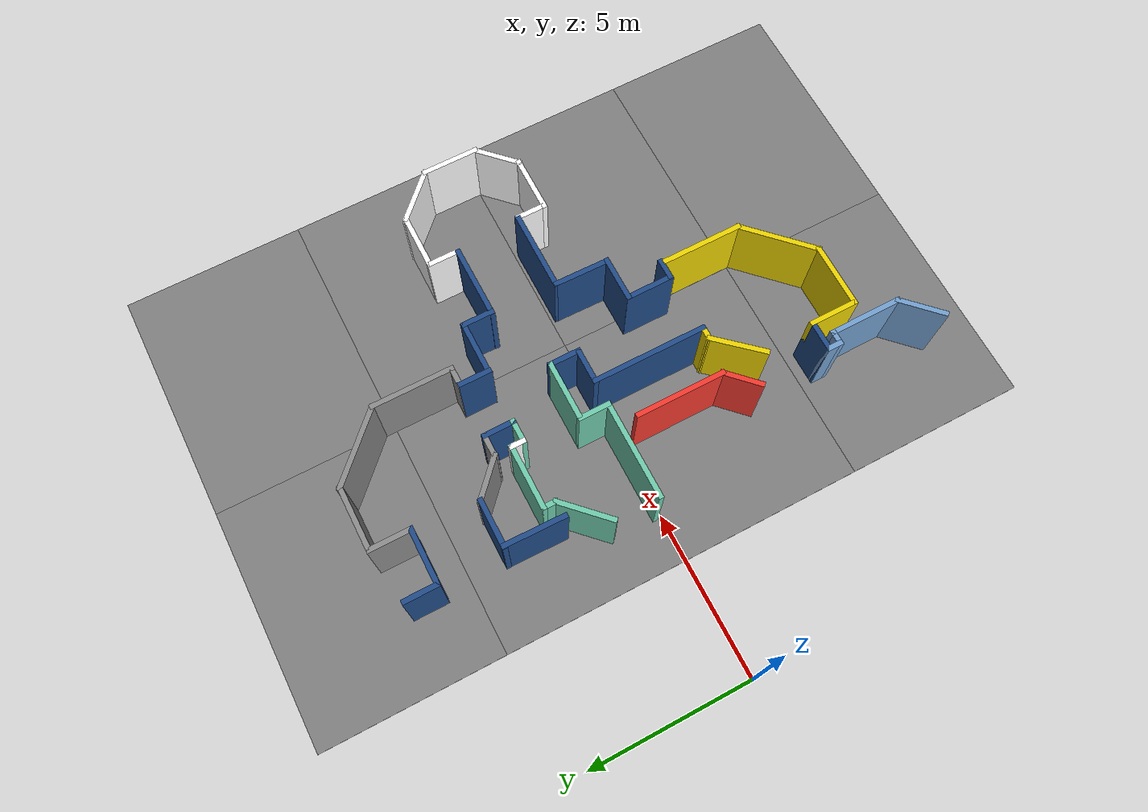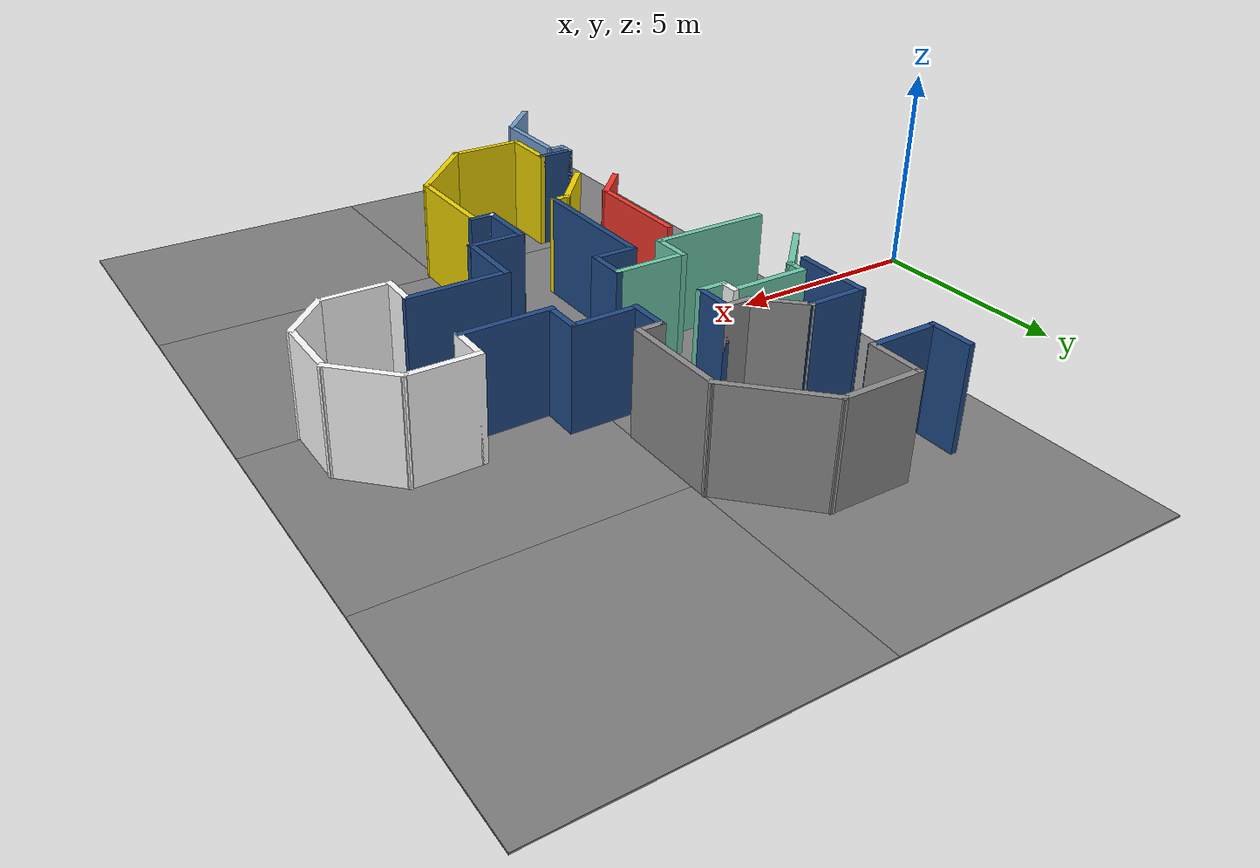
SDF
<sdf version="1.7">
 <world name="default">
  <model name="among_us_world">
   <pose>0.133216 -0.12311 0 0 -0 0</pose>
   <link name="Wall_10">
    <collision name="Wall_10_Collision">
     <geometry><box><size>0.677967 0.15 2.5</size></box></geometry>
     <pose>0 0 1.25 0 -0 0</pose>
    </collision>
    <visual name="Wall_10_Visual">
     <pose>0 0 1.25 0 -0 0</pose>
     <geometry><box><size>0.677967 0.15 2.5</size></box></geometry>
     <material>
      <ambient>0.55 0.55 0.55 1</ambient>
      <diffuse>0.55 0.55 0.55 1</diffuse>
      <specular>0.08 0.08 0.08 1</specular>
      <emissive>0 0 0 1</emissive>
      <pbr><metal><roughness>0.85</roughness><metalness>0</metalness></metal></pbr>
     </material>
     <meta><layer>0</layer></meta>
    </visual>
    <pose>10.3484 3.61514 0 0 -0 3.14159</pose>
   </link>
   <link name="Wall_11">
    <collision name="Wall_11_Collision">
     <geometry><box><size>1 0.15 2.5</size></box></geometry>
     <pose>0 0 1.25 0 -0 0</pose>
    </collision>
    <visual name="Wall_11_Visual">
     <pose>0 0 1.25 0 -0 0</pose>
     <geometry><box><size>1 0.15 2.5</size></box></geometry>
     <material>
      <ambient>0.12549 0.290196 0.529412 1</ambient>
      <diffuse>0.12549 0.290196 0.529412 1</diffuse>
      <specular>0.08 0.08 0.08 1</specular>
      <emissive>0 0 0 1</emissive>
      <pbr>
       <metal>
        <albedo_map>model://asphalt_plane/materials/textures/tarmac.png</albedo_map>
        <roughness>0.85</roughness>
        <metalness>0</metalness>
       </metal>
      </pbr>
     </material>
     <meta><layer>0</layer></meta>
    </visual>
    <pose>10.0844 3.17225 0 0 -0 -1.5708</pose>
   </link>
   <link name="Wall_118">
    <collision name="Wall_118_Collision">
     <geometry><box><size>1.5 0.15 2.5</size></box></geometry>
     <pose>0 0 1.25 0 -0 0</pose>
    </collision>
    <visual name="Wall_118_Visual">
     <pose>0 0 1.25 0 -0 0</pose>
     <geometry><box><size>1.5 0.15 2.5</size></box></geometry>
     <material>
      <ambient>0.12549 0.290196 0.529412 1</ambient>
      <diffuse>0.12549 0.290196 0.529412 1</diffuse>
      <specular>0.08 0.08 0.08 1</specular>
      <emissive>0 0 0 1</emissive>
      <pbr>
       <metal>
        <albedo_map>model://asphalt_plane/materials/textures/tarmac.png</albedo_map>
        <roughness>0.85</roughness>
        <metalness>0</metalness>
       </metal>
      </pbr>
     </material>
     <meta><layer>0</layer></meta>
    </visual>
    <pose>6.27303 4.52497 0 0 -0 0</pose>
   </link>
   <link name="Wall_119">
    <collision name="Wall_119_Collision">
     <geometry><box><size>1.41276 0.15 2.5</size></box></geometry>
     <pose>0 0 1.25 0 -0 0</pose>
    </collision>
    <visual name="Wall_119_Visual">
     <pose>0 0 1.25 0 -0 0</pose>
     <geometry><box><size>1.41276 0.15 2.5</size></box></geometry>
     <material>
      <ambient>0.55 0.55 0.55 1</ambient>
      <diffuse>0.55 0.55 0.55 1</diffuse>
      <specular>0.08 0.08 0.08 1</specular>
      <emissive>0 0 0 1</emissive>
      <pbr><metal><roughness>0.85</roughness><metalness>0</metalness></metal></pbr>
     </material>
     <meta><layer>0</layer></meta>
    </visual>
    <pose>7.42533 4.09435 0 0 -0 -0.750545</pose>
   </link>
   <link name="Wall_12">
    <collision name="Wall_12_Collision">
     <geometry><box><size>1.67797 0.15 2.5</size></box></geometry>
     <pose>0 0 1.25 0 -0 0</pose>
    </collision>
    <visual name="Wall_12_Visual">
     <pose>0 0 1.25 0 -0 0</pose>
     <geometry><box><size>1.67797 0.15 2.5</size></box></geometry>
     <material>
      <ambient>0.12549 0.290196 0.529412 1</ambient>
      <diffuse>0.12549 0.290196 0.529412 1</diffuse>
      <specular>0.08 0.08 0.08 1</specular>
      <emissive>0 0 0 1</emissive>
      <pbr>
       <metal>
        <albedo_map>model://asphalt_plane/materials/textures/tarmac.png</albedo_map>
        <roughness>0.85</roughness>
        <metalness>0</metalness>
       </metal>
      </pbr>
     </material>
     <meta><layer>0</layer></meta>
    </visual>
    <pose>10.8484 2.76514 0 0 -0 0</pose>
   </link>
   <link name="Wall_122">
    <collision name="Wall_122_Collision">
     <geometry><box><size>0.75 0.15 2.5</size></box></geometry>
     <pose>0 0 1.25 0 -0 0</pose>
    </collision>
    <visual name="Wall_122_Visual">
     <pose>0 0 1.25 0 -0 0</pose>
     <geometry><box><size>0.75 0.15 2.5</size></box></geometry>
     <material>
      <ambient>0.55 0.55 0.55 1</ambient>
      <diffuse>0.55 0.55 0.55 1</diffuse>
      <specular>0.08 0.08 0.08 1</specular>
      <emissive>0 0 0 1</emissive>
      <pbr><metal><roughness>0.85</roughness><metalness>0</metalness></metal></pbr>
     </material>
     <meta><layer>0</layer></meta>
    </visual>
    <pose>8.18707 3.66372 0 0 -0 0</pose>
   </link>
   <link name="Wall_123">
    <collision name="Wall_123_Collision">
     <geometry><box><size>1 0.15 2.5</size></box></geometry>
     <pose>0 0 1.25 0 -0 0</pose>
    </collision>
    <visual name="Wall_123_Visual">
     <pose>0 0 1.25 0 -0 0</pose>
     <geometry><box><size>1 0.15 2.5</size></box></geometry>
     <material>
      <ambient>0.12549 0.290196 0.529412 1</ambient>
      <diffuse>0.12549 0.290196 0.529412 1</diffuse>
      <specular>0.08 0.08 0.08 1</specular>
      <emissive>0 0 0 1</emissive>
      <pbr>
       <metal>
        <albedo_map>model://asphalt_plane/materials/textures/tarmac.png</albedo_map>
        <roughness>0.85</roughness>
        <metalness>0</metalness>
       </metal>
      </pbr>
     </material>
     <meta><layer>0</layer></meta>
    </visual>
    <pose>8.48707 3.23872 0 0 -0 -1.5708</pose>
   </link>
   <link name="Wall_124">
    <collision name="Wall_124_Collision">
     <geometry><box><size>0.75 0.15 2.5</size></box></geometry>
     <pose>0 0 1.25 0 -0 0</pose>
    </collision>
    <visual name="Wall_124_Visual">
     <pose>0 0 1.25 0 -0 0</pose>
     <geometry><box><size>0.75 0.15 2.5</size></box></geometry>
     <material>
      <ambient>0.435294 0.796078 0.67451 1</ambient>
      <diffuse>0.435294 0.796078 0.67451 1</diffuse>
      <specular>0.08 0.08 0.08 1</specular>
      <emissive>0 0 0 1</emissive>
      <pbr>
       <metal>
        <albedo_map>model://among_us_world/materials/textures/ceiling_tiled_111_203_172.jpg</albedo_map>
        <roughness>0.85</roughness>
        <metalness>0</metalness>
       </metal>
      </pbr>
     </material>
     <meta><layer>0</layer></meta>
    </visual>
    <pose>8.18707 2.81372 0 0 -0 3.14159</pose>
   </link>
   <link name="Wall_125">
    <collision name="Wall_125_Collision">
     <geometry><box><size>0.5 0.15 2.5</size></box></geometry>
     <pose>0 0 1.25 0 -0 0</pose>
    </collision>
    <visual name="Wall_125_Visual">
     <pose>0 0 1.25 0 -0 0</pose>
     <geometry><box><size>0.5 0.15 2.5</size></box></geometry>
     <material>
      <ambient>1 1 1 1</ambient>
      <diffuse>1 1 1 1</diffuse>
      <specular>0.08 0.08 0.08 1</specular>
      <emissive>0 0 0 1</emissive>
      <pbr>
       <metal>
        <albedo_map>model://among_us_world/materials/textures/ceiling_tiled_255_255_255.jpg</albedo_map>
        <roughness>0.85</roughness>
        <metalness>0</metalness>
       </metal>
      </pbr>
     </material>
     <meta><layer>0</layer></meta>
    </visual>
    <pose>7.88707 2.98872 0 0 -0 1.5708</pose>
   </link>
   <link name="Wall_126">
    <collision name="Wall_126_Collision">
     <geometry><box><size>2 0.15 2.5</size></box></geometry>
     <pose>0 0 1.25 0 -0 0</pose>
    </collision>
    <visual name="Wall_126_Visual">
     <pose>0 0 1.25 0 -0 0</pose>
     <geometry><box><size>2 0.15 2.5</size></box></geometry>
     <material>
      <ambient>0.435294 0.796078 0.67451 1</ambient>
      <diffuse>0.435294 0.796078 0.67451 1</diffuse>
      <specular>0.08 0.08 0.08 1</specular>
      <emissive>0 0 0 1</emissive>
      <pbr>
       <metal>
        <albedo_map>model://among_us_world/materials/textures/ceiling_tiled_111_203_172.jpg</albedo_map>
        <roughness>0.85</roughness>
        <metalness>0</metalness>
       </metal>
      </pbr>
     </material>
     <meta><layer>0</layer></meta>
    </visual>
    <pose>6.96207 3.16372 0 0 -0 3.14159</pose>
   </link>
   <link name="Wall_127">
    <collision name="Wall_127_Collision">
     <geometry><box><size>0.5 0.15 2.5</size></box></geometry>
     <pose>0 0 1.25 0 -0 0</pose>
    </collision>
    <visual name="Wall_127_Visual">
     <pose>0 0 1.25 0 -0 0</pose>
     <geometry><box><size>0.5 0.15 2.5</size></box></geometry>
     <material>
      <ambient>0.435294 0.796078 0.67451 1</ambient>
      <diffuse>0.435294 0.796078 0.67451 1</diffuse>
      <specular>0.08 0.08 0.08 1</specular>
      <emissive>0 0 0 1</emissive>
      <pbr>
       <metal>
        <albedo_map>model://among_us_world/materials/textures/ceiling_tiled_111_203_172.jpg</albedo_map>
        <roughness>0.85</roughness>
        <metalness>0</metalness>
       </metal>
      </pbr>
     </material>
     <meta><layer>0</layer></meta>
    </visual>
    <pose>6.03707 2.98872 0 0 -0 -1.5708</pose>
   </link>
   <link name="Wall_128">
    <collision name="Wall_128_Collision">
     <geometry><box><size>1.75 0.15 2.5</size></box></geometry>
     <pose>0 0 1.25 0 -0 0</pose>
    </collision>
    <visual name="Wall_128_Visual">
     <pose>0 0 1.25 0 -0 0</pose>
     <geometry><box><size>1.75 0.15 2.5</size></box></geometry>
     <material>
      <ambient>0.435294 0.796078 0.67451 1</ambient>
      <diffuse>0.435294 0.796078 0.67451 1</diffuse>
      <specular>0.08 0.08 0.08 1</specular>
      <emissive>0 0 0 1</emissive>
      <pbr>
       <metal>
        <albedo_map>model://among_us_world/materials/textures/ceiling_tiled_111_203_172.jpg</albedo_map>
        <roughness>0.85</roughness>
        <metalness>0</metalness>
       </metal>
      </pbr>
     </material>
     <meta><layer>0</layer></meta>
    </visual>
    <pose>5.47138 2.24804 0 0 -0 -2.35619</pose>
   </link>
   <link name="Wall_13">
    <collision name="Wall_13_Collision">
     <geometry><box><size>0.99953 0.15 2.5</size></box></geometry>
     <pose>0 0 1.25 0 -0 0</pose>
    </collision>
    <visual name="Wall_13_Visual">
     <pose>0 0 1.25 0 -0 0</pose>
     <geometry><box><size>0.99953 0.15 2.5</size></box></geometry>
     <material>
      <ambient>0.12549 0.290196 0.529412 1</ambient>
      <diffuse>0.12549 0.290196 0.529412 1</diffuse>
      <specular>0.08 0.08 0.08 1</specular>
      <emissive>0 0 0 1</emissive>
      <pbr>
       <metal>
        <albedo_map>model://asphalt_plane/materials/textures/tarmac.png</albedo_map>
        <roughness>0.85</roughness>
        <metalness>0</metalness>
       </metal>
      </pbr>
     </material>
     <meta><layer>0</layer></meta>
    </visual>
    <pose>11.6124 2.34037 0 0 -0 -1.5708</pose>
   </link>
   <link name="Wall_130">
    <collision name="Wall_130_Collision">
     <geometry><box><size>3 0.15 2.5</size></box></geometry>
     <pose>0 0 1.25 0 -0 0</pose>
    </collision>
    <visual name="Wall_130_Visual">
     <pose>0 0 1.25 0 -0 0</pose>
     <geometry><box><size>3 0.15 2.5</size></box></geometry>
     <material>
      <ambient>0.435294 0.796078 0.67451 1</ambient>
      <diffuse>0.435294 0.796078 0.67451 1</diffuse>
      <specular>0.08 0.08 0.08 1</specular>
      <emissive>0 0 0 1</emissive>
      <pbr>
       <metal>
        <albedo_map>model://among_us_world/materials/textures/ceiling_tiled_111_203_172.jpg</albedo_map>
        <roughness>0.85</roughness>
        <metalness>0</metalness>
       </metal>
      </pbr>
     </material>
     <meta><layer>0</layer></meta>
    </visual>
    <pose>6.3307 0.332351 0 0 -0 0</pose>
   </link>
   <link name="Wall_131">
    <collision name="Wall_131_Collision">
     <geometry><box><size>1 0.15 2.5</size></box></geometry>
     <pose>0 0 1.25 0 -0 0</pose>
    </collision>
    <visual name="Wall_131_Visual">
     <pose>0 0 1.25 0 -0 0</pose>
     <geometry><box><size>1 0.15 2.5</size></box></geometry>
     <material>
      <ambient>0.435294 0.796078 0.67451 1</ambient>
      <diffuse>0.435294 0.796078 0.67451 1</diffuse>
      <specular>0.08 0.08 0.08 1</specular>
      <emissive>0 0 0 1</emissive>
      <pbr>
       <metal>
        <albedo_map>model://among_us_world/materials/textures/ceiling_tiled_111_203_172.jpg</albedo_map>
        <roughness>0.85</roughness>
        <metalness>0</metalness>
       </metal>
      </pbr>
     </material>
     <meta><layer>0</layer></meta>
    </visual>
    <pose>7.7557 0.757351 0 0 -0 1.5708</pose>
   </link>
   <link name="Wall_132">
    <collision name="Wall_132_Collision">
     <geometry><box><size>1.85593 0.15 2.5</size></box></geometry>
     <pose>0 0 1.25 0 -0 0</pose>
    </collision>
    <visual name="Wall_132_Visual">
     <pose>0 0 1.25 0 -0 0</pose>
     <geometry><box><size>1.85593 0.15 2.5</size></box></geometry>
     <material>
      <ambient>0.435294 0.796078 0.67451 1</ambient>
      <diffuse>0.435294 0.796078 0.67451 1</diffuse>
      <specular>0.08 0.08 0.08 1</specular>
      <emissive>0 0 0 1</emissive>
      <pbr>
       <metal>
        <albedo_map>model://among_us_world/materials/textures/ceiling_tiled_111_203_172.jpg</albedo_map>
        <roughness>0.85</roughness>
        <metalness>0</metalness>
       </metal>
      </pbr>
     </material>
     <meta><layer>0</layer></meta>
    </visual>
    <pose>8.60867 1.18235 0 0 -0 0</pose>
   </link>
   <link name="Wall_133">
    <collision name="Wall_133_Collision">
     <geometry><box><size>1 0.15 2.5</size></box></geometry>
     <pose>0 0 1.25 0 -0 0</pose>
    </collision>
    <visual name="Wall_133_Visual">
     <pose>0 0 1.25 0 -0 0</pose>
     <geometry><box><size>1 0.15 2.5</size></box></geometry>
     <material>
      <ambient>0.12549 0.290196 0.529412 1</ambient>
      <diffuse>0.12549 0.290196 0.529412 1</diffuse>
      <specular>0.08 0.08 0.08 1</specular>
      <emissive>0 0 0 1</emissive>
      <pbr>
       <metal>
        <albedo_map>model://asphalt_plane/materials/textures/tarmac.png</albedo_map>
        <roughness>0.85</roughness>
        <metalness>0</metalness>
       </metal>
      </pbr>
     </material>
     <meta><layer>0</layer></meta>
    </visual>
    <pose>9.47952 0.757351 0 0 -0 -1.5708</pose>
   </link>
   <link name="Wall_134">
    <collision name="Wall_134_Collision">
     <geometry><box><size>1.10593 0.15 2.5</size></box></geometry>
     <pose>0 0 1.25 0 -0 0</pose>
    </collision>
    <visual name="Wall_134_Visual">
     <pose>0 0 1.25 0 -0 0</pose>
     <geometry><box><size>1.10593 0.15 2.5</size></box></geometry>
     <material>
      <ambient>0.12549 0.290196 0.529412 1</ambient>
      <diffuse>0.12549 0.290196 0.529412 1</diffuse>
      <specular>0.08 0.08 0.08 1</specular>
      <emissive>0 0 0 1</emissive>
      <pbr>
       <metal>
        <albedo_map>model://asphalt_plane/materials/textures/tarmac.png</albedo_map>
        <roughness>0.85</roughness>
        <metalness>0</metalness>
       </metal>
      </pbr>
     </material>
     <meta><layer>0</layer></meta>
    </visual>
    <pose>8.98367 0.332351 0 0 -0 3.14159</pose>
   </link>
   <link name="Wall_135">
    <collision name="Wall_135_Collision">
     <geometry><box><size>3.5 0.15 2.5</size></box></geometry>
     <pose>0 0 1.25 0 -0 0</pose>
    </collision>
    <visual name="Wall_135_Visual">
     <pose>0 0 1.25 0 -0 0</pose>
     <geometry><box><size>3.5 0.15 2.5</size></box></geometry>
     <material>
      <ambient>0.12549 0.290196 0.529412 1</ambient>
      <diffuse>0.12549 0.290196 0.529412 1</diffuse>
      <specular>0.08 0.08 0.08 1</specular>
      <emissive>0 0 0 1</emissive>
      <pbr>
       <metal>
        <albedo_map>model://asphalt_plane/materials/textures/tarmac.png</albedo_map>
        <roughness>0.85</roughness>
        <metalness>0</metalness>
       </metal>
      </pbr>
     </material>
     <meta><layer>0</layer></meta>
    </visual>
    <pose>8.5057 -1.34265 0 0 -0 -1.5708</pose>
   </link>
   <link name="Wall_136">
    <collision name="Wall_136_Collision">
     <geometry><box><size>0.5 0.15 2.5</size></box></geometry>
     <pose>0 0 1.25 0 -0 0</pose>
    </collision>
    <visual name="Wall_136_Visual">
     <pose>0 0 1.25 0 -0 0</pose>
     <geometry><box><size>0.5 0.15 2.5</size></box></geometry>
     <material>
      <ambient>0.929412 0.831373 0 1</ambient>
      <diffuse>0.929412 0.831373 0 1</diffuse>
      <specular>0.08 0.08 0.08 1</specular>
      <emissive>0 0 0 1</emissive>
      <pbr>
       <metal>
        <albedo_map>model://among_us_world/materials/textures/ceiling_tiled_237_212_0.jpg</albedo_map>
        <roughness>0.85</roughness>
        <metalness>0</metalness>
       </metal>
      </pbr>
     </material>
     <meta><layer>0</layer></meta>
    </visual>
    <pose>8.3307 -3.01765 0 0 -0 3.14159</pose>
   </link>
   <link name="Wall_14">
    <collision name="Wall_14_Collision">
     <geometry><box><size>2.25007 0.15 2.5</size></box></geometry>
     <pose>0 0 1.25 0 -0 0</pose>
    </collision>
    <visual name="Wall_14_Visual">
     <pose>0 0 1.25 0 -0 0</pose>
     <geometry><box><size>2.25007 0.15 2.5</size></box></geometry>
     <material>
      <ambient>0.12549 0.290196 0.529412 1</ambient>
      <diffuse>0.12549 0.290196 0.529412 1</diffuse>
      <specular>0.08 0.08 0.08 1</specular>
      <emissive>0 0 0 1</emissive>
      <pbr>
       <metal>
        <albedo_map>model://asphalt_plane/materials/textures/tarmac.png</albedo_map>
        <roughness>0.85</roughness>
        <metalness>0</metalness>
       </metal>
      </pbr>
     </material>
     <meta><layer>0</layer></meta>
    </visual>
    <pose>12.6445 1.92431 0 0 -0 0.008281</pose>
   </link>
   <link name="Wall_143">
    <collision name="Wall_143_Collision">
     <geometry><box><size>1.75259 0.15 2.5</size></box></geometry>
     <pose>0 0 1.25 0 -0 0</pose>
    </collision>
    <visual name="Wall_143_Visual">
     <pose>0 0 1.25 0 -0 0</pose>
     <geometry><box><size>1.75259 0.15 2.5</size></box></geometry>
     <material>
      <ambient>0.929412 0.831373 0 1</ambient>
      <diffuse>0.929412 0.831373 0 1</diffuse>
      <specular>0.08 0.08 0.08 1</specular>
      <emissive>0 0 0 1</emissive>
      <pbr>
       <metal>
        <albedo_map>model://among_us_world/materials/textures/ceiling_tiled_237_212_0.jpg</albedo_map>
        <roughness>0.85</roughness>
        <metalness>0</metalness>
       </metal>
      </pbr>
     </material>
     <meta><layer>0</layer></meta>
    </visual>
    <pose>7.62213 -3.61546 0 0 -0 -2.29947</pose>
   </link>
   <link name="Wall_15">
    <collision name="Wall_15_Collision">
     <geometry><box><size>1.02562 0.15 2.5</size></box></geometry>
     <pose>0 0 1.25 0 -0 0</pose>
    </collision>
    <visual name="Wall_15_Visual">
     <pose>0 0 1.25 0 -0 0</pose>
     <geometry><box><size>1.02562 0.15 2.5</size></box></geometry>
     <material>
      <ambient>1 1 1 1</ambient>
      <diffuse>1 1 1 1</diffuse>
      <specular>0.08 0.08 0.08 1</specular>
      <emissive>0 0 0 1</emissive>
      <pbr>
       <metal>
        <albedo_map>model://among_us_world/materials/textures/ceiling_tiled_46_52_54.jpg</albedo_map>
        <roughness>0.85</roughness>
        <metalness>0</metalness>
       </metal>
      </pbr>
     </material>
     <meta><layer>0</layer></meta>
    </visual>
    <pose>13.7124 2.37081 0 0 -0 1.5708</pose>
   </link>
   <link name="Wall_179">
    <collision name="Wall_179_Collision">
     <geometry><box><size>1.90693 0.15 2.5</size></box></geometry>
     <pose>0 0 1.25 0 -0 0</pose>
    </collision>
    <visual name="Wall_179_Visual">
     <pose>0 0 1.25 0 -0 0</pose>
     <geometry><box><size>1.90693 0.15 2.5</size></box></geometry>
     <material>
      <ambient>0.12549 0.290196 0.529412 1</ambient>
      <diffuse>0.12549 0.290196 0.529412 1</diffuse>
      <specular>0.08 0.08 0.08 1</specular>
      <emissive>0 0 0 1</emissive>
      <pbr>
       <metal>
        <albedo_map>model://asphalt_plane/materials/textures/tarmac.png</albedo_map>
        <roughness>0.85</roughness>
        <metalness>0</metalness>
       </metal>
      </pbr>
     </material>
     <meta><layer>0</layer></meta>
    </visual>
    <pose>5.59803 3.64664 0 0 -0 -1.58851</pose>
   </link>
   <link name="Wall_19">
    <collision name="Wall_19_Collision">
     <geometry><box><size>1.75 0.15 2.5</size></box></geometry>
     <pose>0 0 1.25 0 -0 0</pose>
    </collision>
    <visual name="Wall_19_Visual">
     <pose>0 0 1.25 0 -0 0</pose>
     <geometry><box><size>1.75 0.15 2.5</size></box></geometry>
     <material>
      <ambient>1 1 1 1</ambient>
      <diffuse>1 1 1 1</diffuse>
      <specular>0.08 0.08 0.08 1</specular>
      <emissive>0 0 0 1</emissive>
      <pbr>
       <metal>
        <albedo_map>model://among_us_world/materials/textures/ceiling_tiled_46_52_54.jpg</albedo_map>
        <roughness>0.85</roughness>
        <metalness>0</metalness>
       </metal>
      </pbr>
     </material>
     <meta><layer>0</layer></meta>
    </visual>
    <pose>14.5124 2.80862 0 0 -0 0</pose>
   </link>
   <link name="Wall_192">
    <collision name="Wall_192_Collision">
     <geometry><box><size>1.25 0.15 2.5</size></box></geometry>
     <pose>0 0 1.25 0 -0 0</pose>
    </collision>
    <visual name="Wall_192_Visual">
     <pose>0 0 1.25 0 -0 0</pose>
     <geometry><box><size>1.25 0.15 2.5</size></box></geometry>
     <material>
      <ambient>0.95 0.22 0.18 1</ambient>
      <diffuse>0.95 0.22 0.18 1</diffuse>
      <specular>0.08 0.08 0.08 1</specular>
      <emissive>0 0 0 1</emissive>
      <pbr>
       <metal>
        <albedo_map>model://among_us_world/materials/textures/ceiling_tiled_164_0_0.jpg</albedo_map>
        <roughness>0.85</roughness>
        <metalness>0</metalness>
       </metal>
      </pbr>
     </material>
     <meta><layer>0</layer></meta>
    </visual>
    <pose>6.72747 -3.22436 0 0 -0 0.785398</pose>
   </link>
   <link name="Wall_193">
    <collision name="Wall_193_Collision">
     <geometry><box><size>2.75 0.15 2.5</size></box></geometry>
     <pose>0 0 1.25 0 -0 0</pose>
    </collision>
    <visual name="Wall_193_Visual">
     <pose>0 0 1.25 0 -0 0</pose>
     <geometry><box><size>2.75 0.15 2.5</size></box></geometry>
     <material>
      <ambient>0.95 0.22 0.18 1</ambient>
      <diffuse>0.95 0.22 0.18 1</diffuse>
      <specular>0.08 0.08 0.08 1</specular>
      <emissive>0 0 0 1</emissive>
      <pbr>
       <metal>
        <albedo_map>model://among_us_world/materials/textures/ceiling_tiled_164_0_0.jpg</albedo_map>
        <roughness>0.85</roughness>
        <metalness>0</metalness>
       </metal>
      </pbr>
     </material>
     <meta><layer>0</layer></meta>
    </visual>
    <pose>7.11638 -1.53545 0 0 -0 1.5708</pose>
   </link>
   <link name="Wall_20">
    <collision name="Wall_20_Collision">
     <geometry><box><size>1.75 0.15 2.5</size></box></geometry>
     <pose>0 0 1.25 0 -0 0</pose>
    </collision>
    <visual name="Wall_20_Visual">
     <pose>0 0 1.25 0 -0 0</pose>
     <geometry><box><size>1.75 0.15 2.5</size></box></geometry>
     <material>
      <ambient>1 1 1 1</ambient>
      <diffuse>1 1 1 1</diffuse>
      <specular>0.08 0.08 0.08 1</specular>
      <emissive>0 0 0 1</emissive>
      <pbr>
       <metal>
        <albedo_map>model://among_us_world/materials/textures/ceiling_tiled_46_52_54.jpg</albedo_map>
        <roughness>0.85</roughness>
        <metalness>0</metalness>
       </metal>
      </pbr>
     </material>
     <meta><layer>0</layer></meta>
    </visual>
    <pose>15.8781 2.24293 0 0 -0 -0.785398</pose>
   </link>
   <link name="Wall_21">
    <collision name="Wall_21_Collision">
     <geometry><box><size>1.75 0.15 2.5</size></box></geometry>
     <pose>0 0 1.25 0 -0 0</pose>
    </collision>
    <visual name="Wall_21_Visual">
     <pose>0 0 1.25 0 -0 0</pose>
     <geometry><box><size>1.75 0.15 2.5</size></box></geometry>
     <material>
      <ambient>1 1 1 1</ambient>
      <diffuse>1 1 1 1</diffuse>
      <specular>0.08 0.08 0.08 1</specular>
      <emissive>0 0 0 1</emissive>
      <pbr>
       <metal>
        <albedo_map>model://among_us_world/materials/textures/ceiling_tiled_255_255_255.jpg</albedo_map>
        <roughness>0.85</roughness>
        <metalness>0</metalness>
       </metal>
      </pbr>
     </material>
     <meta><layer>0</layer></meta>
    </visual>
    <pose>16.4438 0.877247 0 0 -0 -1.5708</pose>
   </link>
   <link name="Wall_22">
    <collision name="Wall_22_Collision">
     <geometry><box><size>1.5 0.15 2.5</size></box></geometry>
     <pose>0 0 1.25 0 -0 0</pose>
    </collision>
    <visual name="Wall_22_Visual">
     <pose>0 0 1.25 0 -0 0</pose>
     <geometry><box><size>1.5 0.15 2.5</size></box></geometry>
     <material>
      <ambient>1 1 1 1</ambient>
      <diffuse>1 1 1 1</diffuse>
      <specular>0.08 0.08 0.08 1</specular>
      <emissive>0 0 0 1</emissive>
      <pbr>
       <metal>
        <albedo_map>model://among_us_world/materials/textures/ceiling_tiled_46_52_54.jpg</albedo_map>
        <roughness>0.85</roughness>
        <metalness>0</metalness>
       </metal>
      </pbr>
     </material>
     <meta><layer>0</layer></meta>
    </visual>
    <pose>15.9665 -0.40005 0 0 -0 -2.35619</pose>
   </link>
   <link name="Wall_23">
    <collision name="Wall_23_Collision">
     <geometry><box><size>1.75 0.15 2.5</size></box></geometry>
     <pose>0 0 1.25 0 -0 0</pose>
    </collision>
    <visual name="Wall_23_Visual">
     <pose>0 0 1.25 0 -0 0</pose>
     <geometry><box><size>1.75 0.15 2.5</size></box></geometry>
     <material>
      <ambient>1 1 1 1</ambient>
      <diffuse>1 1 1 1</diffuse>
      <specular>0.08 0.08 0.08 1</specular>
      <emissive>0 0 0 1</emissive>
      <pbr>
       <metal>
        <albedo_map>model://among_us_world/materials/textures/ceiling_tiled_255_255_255.jpg</albedo_map>
        <roughness>0.85</roughness>
        <metalness>0</metalness>
       </metal>
      </pbr>
     </material>
     <meta><layer>0</layer></meta>
    </visual>
    <pose>14.6892 -0.877347 0 0 -0 3.14159</pose>
   </link>
   <link name="Wall_24">
    <collision name="Wall_24_Collision">
     <geometry><box><size>0.963748 0.15 2.5</size></box></geometry>
     <pose>0 0 1.25 0 -0 0</pose>
    </collision>
    <visual name="Wall_24_Visual">
     <pose>0 0 1.25 0 -0 0</pose>
     <geometry><box><size>0.963748 0.15 2.5</size></box></geometry>
     <material>
      <ambient>1 1 1 1</ambient>
      <diffuse>1 1 1 1</diffuse>
      <specular>0.08 0.08 0.08 1</specular>
      <emissive>0 0 0 1</emissive>
      <pbr>
       <metal>
        <albedo_map>model://among_us_world/materials/textures/ceiling_tiled_46_52_54.jpg</albedo_map>
        <roughness>0.85</roughness>
        <metalness>0</metalness>
       </metal>
      </pbr>
     </material>
     <meta><layer>0</layer></meta>
    </visual>
    <pose>13.8892 -0.470473 0 0 -0 1.5708</pose>
   </link>
   <link name="Wall_25">
    <collision name="Wall_25_Collision">
     <geometry><box><size>2.5 0.15 2.5</size></box></geometry>
     <pose>0 0 1.25 0 -0 0</pose>
    </collision>
    <visual name="Wall_25_Visual">
     <pose>0 0 1.25 0 -0 0</pose>
     <geometry><box><size>2.5 0.15 2.5</size></box></geometry>
     <material>
      <ambient>0.12549 0.290196 0.529412 1</ambient>
      <diffuse>0.12549 0.290196 0.529412 1</diffuse>
      <specular>0.08 0.08 0.08 1</specular>
      <emissive>0 0 0 1</emissive>
      <pbr>
       <metal>
        <albedo_map>model://asphalt_plane/materials/textures/tarmac.png</albedo_map>
        <roughness>0.85</roughness>
        <metalness>0</metalness>
       </metal>
      </pbr>
     </material>
     <meta><layer>0</layer></meta>
    </visual>
    <pose>12.7142 -0.045708 0 0 -0 3.14159</pose>
   </link>
   <link name="Wall_26">
    <collision name="Wall_26_Collision">
     <geometry><box><size>1.73416 0.15 2.5</size></box></geometry>
     <pose>0 0 1.25 0 -0 0</pose>
    </collision>
    <visual name="Wall_26_Visual">
     <pose>0 0 1.25 0 -0 0</pose>
     <geometry><box><size>1.73416 0.15 2.5</size></box></geometry>
     <material>
      <ambient>0.12549 0.290196 0.529412 1</ambient>
      <diffuse>0.12549 0.290196 0.529412 1</diffuse>
      <specular>0.08 0.08 0.08 1</specular>
      <emissive>0 0 0 1</emissive>
      <pbr>
       <metal>
        <albedo_map>model://asphalt_plane/materials/textures/tarmac.png</albedo_map>
        <roughness>0.85</roughness>
        <metalness>0</metalness>
       </metal>
      </pbr>
     </material>
     <meta><layer>0</layer></meta>
    </visual>
    <pose>11.5256 -0.855562 0 0 -0 -1.58788</pose>
   </link>
   <link name="Wall_27">
    <collision name="Wall_27_Collision">
     <geometry><box><size>1.40477 0.15 2.5</size></box></geometry>
     <pose>0 0 1.25 0 -0 0</pose>
    </collision>
    <visual name="Wall_27_Visual">
     <pose>0 0 1.25 0 -0 0</pose>
     <geometry><box><size>1.40477 0.15 2.5</size></box></geometry>
     <material>
      <ambient>0.12549 0.290196 0.529412 1</ambient>
      <diffuse>0.12549 0.290196 0.529412 1</diffuse>
      <specular>0.08 0.08 0.08 1</specular>
      <emissive>0 0 0 1</emissive>
      <pbr>
       <metal>
        <albedo_map>model://asphalt_plane/materials/textures/tarmac.png</albedo_map>
        <roughness>0.85</roughness>
        <metalness>0</metalness>
       </metal>
      </pbr>
     </material>
     <meta><layer>0</layer></meta>
    </visual>
    <pose>10.8914 -1.64752 0 0 -0 3.14159</pose>
   </link>
   <link name="Wall_4">
    <collision name="Wall_4_Collision">
     <geometry><box><size>1.06331 0.15 2.5</size></box></geometry>
     <pose>0 0 1.25 0 -0 0</pose>
    </collision>
    <visual name="Wall_4_Visual">
     <pose>0 0 1.25 0 -0 0</pose>
     <geometry><box><size>1.06331 0.15 2.5</size></box></geometry>
     <material>
      <ambient>0.12549 0.290196 0.529412 1</ambient>
      <diffuse>0.12549 0.290196 0.529412 1</diffuse>
      <specular>0.08 0.08 0.08 1</specular>
      <emissive>0 0 0 1</emissive>
      <pbr>
       <metal>
        <albedo_map>model://asphalt_plane/materials/textures/tarmac.png</albedo_map>
        <roughness>0.85</roughness>
        <metalness>0</metalness>
       </metal>
      </pbr>
     </material>
     <meta><layer>0</layer></meta>
    </visual>
    <pose>5.50068 6.92018 0 0 -0 -1.5708</pose>
   </link>
   <link name="Wall_5">
    <collision name="Wall_5_Collision">
     <geometry><box><size>1.75 0.15 2.5</size></box></geometry>
     <pose>0 0 1.25 0 -0 0</pose>
    </collision>
    <visual name="Wall_5_Visual">
     <pose>0 0 1.25 0 -0 0</pose>
     <geometry><box><size>1.75 0.15 2.5</size></box></geometry>
     <material>
      <ambient>0.12549 0.290196 0.529412 1</ambient>
      <diffuse>0.12549 0.290196 0.529412 1</diffuse>
      <specular>0.08 0.08 0.08 1</specular>
      <emissive>0 0 0 1</emissive>
      <pbr>
       <metal>
        <albedo_map>model://asphalt_plane/materials/textures/tarmac.png</albedo_map>
        <roughness>0.85</roughness>
        <metalness>0</metalness>
       </metal>
      </pbr>
     </material>
     <meta><layer>0</layer></meta>
    </visual>
    <pose>6.30068 6.44797 0 0 -0 0</pose>
   </link>
   <link name="Wall_6">
    <collision name="Wall_6_Collision">
     <geometry><box><size>1.31331 0.15 2.5</size></box></geometry>
     <pose>0 0 1.25 0 -0 0</pose>
    </collision>
    <visual name="Wall_6_Visual">
     <pose>0 0 1.25 0 -0 0</pose>
     <geometry><box><size>1.31331 0.15 2.5</size></box></geometry>
     <material>
      <ambient>0.55 0.55 0.55 1</ambient>
      <diffuse>0.55 0.55 0.55 1</diffuse>
      <specular>0.08 0.08 0.08 1</specular>
      <emissive>0 0 0 1</emissive>
      <pbr><metal><roughness>0.85</roughness><metalness>0</metalness></metal></pbr>
     </material>
     <meta><layer>0</layer></meta>
    </visual>
    <pose>7.10068 7.04518 0 0 -0 1.5708</pose>
   </link>
   <link name="Wall_7">
    <collision name="Wall_7_Collision">
     <geometry><box><size>2 0.15 2.5</size></box></geometry>
     <pose>0 0 1.25 0 -0 0</pose>
    </collision>
    <visual name="Wall_7_Visual">
     <pose>0 0 1.25 0 -0 0</pose>
     <geometry><box><size>2 0.15 2.5</size></box></geometry>
     <material>
      <ambient>0.55 0.55 0.55 1</ambient>
      <diffuse>0.55 0.55 0.55 1</diffuse>
      <specular>0.08 0.08 0.08 1</specular>
      <emissive>0 0 0 1</emissive>
      <pbr><metal><roughness>0.85</roughness><metalness>0</metalness></metal></pbr>
     </material>
     <meta><layer>0</layer></meta>
    </visual>
    <pose>8.02568 7.62684 0 0 -0 0</pose>
   </link>
   <link name="Wall_73">
    <collision name="Wall_73_Collision">
     <geometry><box><size>1.5 0.15 2.5</size></box></geometry>
     <pose>0 0 1.25 0 -0 0</pose>
    </collision>
    <visual name="Wall_73_Visual">
     <pose>0 0 1.25 0 -0 0</pose>
     <geometry><box><size>1.5 0.15 2.5</size></box></geometry>
     <material>
      <ambient>0.447059 0.623529 0.811765 1</ambient>
      <diffuse>0.447059 0.623529 0.811765 1</diffuse>
      <specular>0.08 0.08 0.08 1</specular>
      <emissive>0 0 0 1</emissive>
      <pbr>
       <metal>
        <albedo_map>model://among_us_world/materials/textures/ceiling_tiled_114_159_207.jpg</albedo_map>
        <roughness>0.85</roughness>
        <metalness>0</metalness>
       </metal>
      </pbr>
     </material>
     <meta><layer>0</layer></meta>
    </visual>
    <pose>6.25753 -8.69102 0 0 -0 0.785398</pose>
   </link>
   <link name="Wall_76">
    <collision name="Wall_76_Collision">
     <geometry><box><size>2.25 0.15 2.5</size></box></geometry>
     <pose>0 0 1.25 0 -0 0</pose>
    </collision>
    <visual name="Wall_76_Visual">
     <pose>0 0 1.25 0 -0 0</pose>
     <geometry><box><size>2.25 0.15 2.5</size></box></geometry>
     <material>
      <ambient>0.447059 0.623529 0.811765 1</ambient>
      <diffuse>0.447059 0.623529 0.811765 1</diffuse>
      <specular>0.08 0.08 0.08 1</specular>
      <emissive>0 0 0 1</emissive>
      <pbr>
       <metal>
        <albedo_map>model://among_us_world/materials/textures/ceiling_tiled_114_159_207.jpg</albedo_map>
        <roughness>0.85</roughness>
        <metalness>0</metalness>
       </metal>
      </pbr>
     </material>
     <meta><layer>0</layer></meta>
    </visual>
    <pose>6.73483 -7.16372 0 0 -0 1.5708</pose>
   </link>
   <link name="Wall_77">
    <collision name="Wall_77_Collision">
     <geometry><box><size>0.5 0.15 2.5</size></box></geometry>
     <pose>0 0 1.25 0 -0 0</pose>
    </collision>
    <visual name="Wall_77_Visual">
     <pose>0 0 1.25 0 -0 0</pose>
     <geometry><box><size>0.5 0.15 2.5</size></box></geometry>
     <material>
      <ambient>0.447059 0.623529 0.811765 1</ambient>
      <diffuse>0.447059 0.623529 0.811765 1</diffuse>
      <specular>0.08 0.08 0.08 1</specular>
      <emissive>0 0 0 1</emissive>
      <pbr>
       <metal>
        <albedo_map>model://among_us_world/materials/textures/ceiling_tiled_114_159_207.jpg</albedo_map>
        <roughness>0.85</roughness>
        <metalness>0</metalness>
       </metal>
      </pbr>
     </material>
     <meta><layer>0</layer></meta>
    </visual>
    <pose>6.55983 -6.11372 0 0 -0 3.14159</pose>
   </link>
   <link name="Wall_78">
    <collision name="Wall_78_Collision">
     <geometry><box><size>0.5 0.15 2.5</size></box></geometry>
     <pose>0 0 1.25 0 -0 0</pose>
    </collision>
    <visual name="Wall_78_Visual">
     <pose>0 0 1.25 0 -0 0</pose>
     <geometry><box><size>0.5 0.15 2.5</size></box></geometry>
     <material>
      <ambient>0.447059 0.623529 0.811765 1</ambient>
      <diffuse>0.447059 0.623529 0.811765 1</diffuse>
      <specular>0.08 0.08 0.08 1</specular>
      <emissive>0 0 0 1</emissive>
      <pbr>
       <metal>
        <albedo_map>model://among_us_world/materials/textures/ceiling_tiled_114_159_207.jpg</albedo_map>
        <roughness>0.85</roughness>
        <metalness>0</metalness>
       </metal>
      </pbr>
     </material>
     <meta><layer>0</layer></meta>
    </visual>
    <pose>6.38483 -5.93872 0 0 -0 1.5708</pose>
   </link>
   <link name="Wall_79">
    <collision name="Wall_79_Collision">
     <geometry><box><size>1 0.15 2.5</size></box></geometry>
     <pose>0 0 1.25 0 -0 0</pose>
    </collision>
    <visual name="Wall_79_Visual">
     <pose>0 0 1.25 0 -0 0</pose>
     <geometry><box><size>1 0.15 2.5</size></box></geometry>
     <material>
      <ambient>0.12549 0.290196 0.529412 1</ambient>
      <diffuse>0.12549 0.290196 0.529412 1</diffuse>
      <specular>0.08 0.08 0.08 1</specular>
      <emissive>0 0 0 1</emissive>
      <pbr>
       <metal>
        <albedo_map>model://asphalt_plane/materials/textures/tarmac.png</albedo_map>
        <roughness>0.85</roughness>
        <metalness>0</metalness>
       </metal>
      </pbr>
     </material>
     <meta><layer>0</layer></meta>
    </visual>
    <pose>6.80983 -5.76372 0 0 -0 0</pose>
   </link>
   <link name="Wall_8">
    <collision name="Wall_8_Collision">
     <geometry><box><size>2.5 0.15 2.5</size></box></geometry>
     <pose>0 0 1.25 0 -0 0</pose>
    </collision>
    <visual name="Wall_8_Visual">
     <pose>0 0 1.25 0 -0 0</pose>
     <geometry><box><size>2.5 0.15 2.5</size></box></geometry>
     <material>
      <ambient>0.55 0.55 0.55 1</ambient>
      <diffuse>0.55 0.55 0.55 1</diffuse>
      <specular>0.08 0.08 0.08 1</specular>
      <emissive>0 0 0 1</emissive>
      <pbr><metal><roughness>0.85</roughness><metalness>0</metalness></metal></pbr>
     </material>
     <meta><layer>0</layer></meta>
    </visual>
    <pose>9.78153 6.79599 0 0 -0 -0.785398</pose>
   </link>
   <link name="Wall_80">
    <collision name="Wall_80_Collision">
     <geometry><box><size>1.5 0.15 2.5</size></box></geometry>
     <pose>0 0 1.25 0 -0 0</pose>
    </collision>
    <visual name="Wall_80_Visual">
     <pose>0 0 1.25 0 -0 0</pose>
     <geometry><box><size>1.5 0.15 2.5</size></box></geometry>
     <material>
      <ambient>0.929412 0.831373 0 1</ambient>
      <diffuse>0.929412 0.831373 0 1</diffuse>
      <specular>0.08 0.08 0.08 1</specular>
      <emissive>0 0 0 1</emissive>
      <pbr>
       <metal>
        <albedo_map>model://among_us_world/materials/textures/ceiling_tiled_237_212_0.jpg</albedo_map>
        <roughness>0.85</roughness>
        <metalness>0</metalness>
       </metal>
      </pbr>
     </material>
     <meta><layer>0</layer></meta>
    </visual>
    <pose>7.23483 -6.43872 0 0 -0 -1.5708</pose>
   </link>
   <link name="Wall_82">
    <collision name="Wall_82_Collision">
     <geometry><box><size>2 0.15 2.5</size></box></geometry>
     <pose>0 0 1.25 0 -0 0</pose>
    </collision>
    <visual name="Wall_82_Visual">
     <pose>0 0 1.25 0 -0 0</pose>
     <geometry><box><size>2 0.15 2.5</size></box></geometry>
     <material>
      <ambient>0.929412 0.831373 0 1</ambient>
      <diffuse>0.929412 0.831373 0 1</diffuse>
      <specular>0.08 0.08 0.08 1</specular>
      <emissive>0 0 0 1</emissive>
      <pbr>
       <metal>
        <albedo_map>model://among_us_world/materials/textures/ceiling_tiled_237_212_0.jpg</albedo_map>
        <roughness>0.85</roughness>
        <metalness>0</metalness>
       </metal>
      </pbr>
     </material>
     <meta><layer>0</layer></meta>
    </visual>
    <pose>8.15983 -7.11372 0 0 -0 0</pose>
   </link>
   <link name="Wall_83">
    <collision name="Wall_83_Collision">
     <geometry><box><size>2.5 0.15 2.5</size></box></geometry>
     <pose>0 0 1.25 0 -0 0</pose>
    </collision>
    <visual name="Wall_83_Visual">
     <pose>0 0 1.25 0 -0 0</pose>
     <geometry><box><size>2.5 0.15 2.5</size></box></geometry>
     <material>
      <ambient>0.929412 0.831373 0 1</ambient>
      <diffuse>0.929412 0.831373 0 1</diffuse>
      <specular>0.08 0.08 0.08 1</specular>
      <emissive>0 0 0 1</emissive>
      <pbr>
       <metal>
        <albedo_map>model://among_us_world/materials/textures/ceiling_tiled_237_212_0.jpg</albedo_map>
        <roughness>0.85</roughness>
        <metalness>0</metalness>
       </metal>
      </pbr>
     </material>
     <meta><layer>0</layer></meta>
    </visual>
    <pose>9.91568 -6.28287 0 0 -0 0.785398</pose>
   </link>
   <link name="Wall_85">
    <collision name="Wall_85_Collision">
     <geometry><box><size>2.5 0.15 2.5</size></box></geometry>
     <pose>0 0 1.25 0 -0 0</pose>
    </collision>
    <visual name="Wall_85_Visual">
     <pose>0 0 1.25 0 -0 0</pose>
     <geometry><box><size>2.5 0.15 2.5</size></box></geometry>
     <material>
      <ambient>0.929412 0.831373 0 1</ambient>
      <diffuse>0.929412 0.831373 0 1</diffuse>
      <specular>0.08 0.08 0.08 1</specular>
      <emissive>0 0 0 1</emissive>
      <pbr>
       <metal>
        <albedo_map>model://among_us_world/materials/textures/ceiling_tiled_237_212_0.jpg</albedo_map>
        <roughness>0.85</roughness>
        <metalness>0</metalness>
       </metal>
      </pbr>
     </material>
     <meta><layer>0</layer></meta>
    </visual>
    <pose>10.7465 -4.27702 0 0 -0 1.5708</pose>
   </link>
   <link name="Wall_89">
    <collision name="Wall_89_Collision">
     <geometry><box><size>1.47984 0.15 2.5</size></box></geometry>
     <pose>0 0 1.25 0 -0 0</pose>
    </collision>
    <visual name="Wall_89_Visual">
     <pose>0 0 1.25 0 -0 0</pose>
     <geometry><box><size>1.47984 0.15 2.5</size></box></geometry>
     <material>
      <ambient>0.12549 0.290196 0.529412 1</ambient>
      <diffuse>0.12549 0.290196 0.529412 1</diffuse>
      <specular>0.08 0.08 0.08 1</specular>
      <emissive>0 0 0 1</emissive>
      <pbr>
       <metal>
        <albedo_map>model://asphalt_plane/materials/textures/tarmac.png</albedo_map>
        <roughness>0.85</roughness>
        <metalness>0</metalness>
       </metal>
      </pbr>
     </material>
     <meta><layer>0</layer></meta>
    </visual>
    <pose>10.2573 -2.31244 0 0 -0 -1.5708</pose>
   </link>
   <link name="Wall_9">
    <collision name="Wall_9_Collision">
     <geometry><box><size>2.5 0.15 2.5</size></box></geometry>
     <pose>0 0 1.25 0 -0 0</pose>
    </collision>
    <visual name="Wall_9_Visual">
     <pose>0 0 1.25 0 -0 0</pose>
     <geometry><box><size>2.5 0.15 2.5</size></box></geometry>
     <material>
      <ambient>0.55 0.55 0.55 1</ambient>
      <diffuse>0.55 0.55 0.55 1</diffuse>
      <specular>0.08 0.08 0.08 1</specular>
      <emissive>0 0 0 1</emissive>
      <pbr><metal><roughness>0.85</roughness><metalness>0</metalness></metal></pbr>
     </material>
     <meta><layer>0</layer></meta>
    </visual>
    <pose>10.6124 4.79014 0 0 -0 -1.5708</pose>
   </link>
   <link name="Wall_90">
    <collision name="Wall_90_Collision">
     <geometry><box><size>0.15 0.15 2.5</size></box></geometry>
     <pose>0 0 1.25 0 -0 0</pose>
    </collision>
    <visual name="Wall_90_Visual">
     <pose>0 0 1.25 0 -0 0</pose>
     <geometry><box><size>0.15 0.15 2.5</size></box></geometry>
     <material>
      <ambient>1 1 1 1</ambient>
      <diffuse>1 1 1 1</diffuse>
      <specular>0.08 0.08 0.08 1</specular>
      <emissive>0 0 0 1</emissive>
      <pbr><metal><roughness>0.85</roughness><metalness>0</metalness></metal></pbr>
     </material>
     <meta><layer>0</layer></meta>
    </visual>
    <pose>10.2844 -2.97735 0 0 -0 0</pose>
   </link>
   <link name="Wall_93">
    <collision name="Wall_93_Collision">
     <geometry><box><size>0.654769 0.15 2.5</size></box></geometry>
     <pose>0 0 1.25 0 -0 0</pose>
    </collision>
    <visual name="Wall_93_Visual">
     <pose>0 0 1.25 0 -0 0</pose>
     <geometry><box><size>0.654769 0.15 2.5</size></box></geometry>
     <material>
      <ambient>0.12549 0.290196 0.529412 1</ambient>
      <diffuse>0.12549 0.290196 0.529412 1</diffuse>
      <specular>0.08 0.08 0.08 1</specular>
      <emissive>0 0 0 1</emissive>
      <pbr>
       <metal>
        <albedo_map>model://asphalt_plane/materials/textures/tarmac.png</albedo_map>
        <roughness>0.85</roughness>
        <metalness>0</metalness>
       </metal>
      </pbr>
     </material>
     <meta><layer>0</layer></meta>
    </visual>
    <pose>10.5368 -2.97735 0 0 -0 0</pose>
   </link>
   <static>1</static>
  </model>
  <model name="asphalt_tile_00_03">
   <static>1</static>
   <pose>7.200 -8.250 -0.020 0 -0 0</pose>
   <link name="link">
    <collision name="collision"><geometry><box><size>7.200 5.500 0.040</size></box></geometry></collision>
    <visual name="visual">
     <cast_shadows>0</cast_shadows>
     <geometry><box><size>7.200 5.500 0.040</size></box></geometry>
     <material>
      <ambient>0.5 0.5 0.5 1</ambient>
      <diffuse>0.5 0.5 0.5 1</diffuse>
      <specular>0.2 0.2 0.2 1</specular>
      <emissive>0 0 0 1</emissive>
      <pbr>
       <metal>
        <albedo_map>model://asphalt_plane/materials/textures/tarmac.png</albedo_map>
        <roughness>0.85</roughness>
        <metalness>0</metalness>
       </metal>
      </pbr>
     </material>
    </visual>
   </link>
  </model>
  <model name="asphalt_tile_00_04">
   <static>1</static>
   <pose>14.400 -8.250 -0.020 0 -0 0</pose>
   <link name="link">
    <collision name="collision"><geometry><box><size>7.200 5.500 0.040</size></box></geometry></collision>
    <visual name="visual">
     <cast_shadows>0</cast_shadows>
     <geometry><box><size>7.200 5.500 0.040</size></box></geometry>
     <material>
      <ambient>0.5 0.5 0.5 1</ambient>
      <diffuse>0.5 0.5 0.5 1</diffuse>
      <specular>0.2 0.2 0.2 1</specular>
      <emissive>0 0 0 1</emissive>
      <pbr>
       <metal>
        <albedo_map>model://asphalt_plane/materials/textures/tarmac.png</albedo_map>
        <roughness>0.85</roughness>
        <metalness>0</metalness>
       </metal>
      </pbr>
     </material>
    </visual>
   </link>
  </model>
  <model name="asphalt_tile_01_03">
   <static>1</static>
   <pose>7.200 -2.750 -0.020 0 -0 0</pose>
   <link name="link">
    <collision name="collision"><geometry><box><size>7.200 5.500 0.040</size></box></geometry></collision>
    <visual name="visual">
     <cast_shadows>0</cast_shadows>
     <geometry><box><size>7.200 5.500 0.040</size></box></geometry>
     <material>
      <ambient>0.5 0.5 0.5 1</ambient>
      <diffuse>0.5 0.5 0.5 1</diffuse>
      <specular>0.2 0.2 0.2 1</specular>
      <emissive>0 0 0 1</emissive>
      <pbr>
       <metal>
        <albedo_map>model://asphalt_plane/materials/textures/tarmac.png</albedo_map>
        <roughness>0.85</roughness>
        <metalness>0</metalness>
       </metal>
      </pbr>
     </material>
    </visual>
   </link>
  </model>
  <model name="asphalt_tile_01_04">
   <static>1</static>
   <pose>14.400 -2.750 -0.020 0 -0 0</pose>
   <link name="link">
    <collision name="collision"><geometry><box><size>7.200 5.500 0.040</size></box></geometry></collision>
    <visual name="visual">
     <cast_shadows>0</cast_shadows>
     <geometry><box><size>7.200 5.500 0.040</size></box></geometry>
     <material>
      <ambient>0.5 0.5 0.5 1</ambient>
      <diffuse>0.5 0.5 0.5 1</diffuse>
      <specular>0.2 0.2 0.2 1</specular>
      <emissive>0 0 0 1</emissive>
      <pbr>
       <metal>
        <albedo_map>model://asphalt_plane/materials/textures/tarmac.png</albedo_map>
        <roughness>0.85</roughness>
        <metalness>0</metalness>
       </metal>
      </pbr>
     </material>
    </visual>
   </link>
  </model>
  <model name="asphalt_tile_02_03">
   <static>1</static>
   <pose>7.200 2.750 -0.020 0 -0 0</pose>
   <link name="link">
    <collision name="collision"><geometry><box><size>7.200 5.500 0.040</size></box></geometry></collision>
    <visual name="visual">
     <cast_shadows>0</cast_shadows>
     <geometry><box><size>7.200 5.500 0.040</size></box></geometry>
     <material>
      <ambient>0.5 0.5 0.5 1</ambient>
      <diffuse>0.5 0.5 0.5 1</diffuse>
      <specular>0.2 0.2 0.2 1</specular>
      <emissive>0 0 0 1</emissive>
      <pbr>
       <metal>
        <albedo_map>model://asphalt_plane/materials/textures/tarmac.png</albedo_map>
        <roughness>0.85</roughness>
        <metalness>0</metalness>
       </metal>
      </pbr>
     </material>
    </visual>
   </link>
  </model>
  <model name="asphalt_tile_02_04">
   <static>1</static>
   <pose>14.400 2.750 -0.020 0 -0 0</pose>
   <link name="link">
    <collision name="collision"><geometry><box><size>7.200 5.500 0.040</size></box></geometry></collision>
    <visual name="visual">
     <cast_shadows>0</cast_shadows>
     <geometry><box><size>7.200 5.500 0.040</size></box></geometry>
     <material>
      <ambient>0.5 0.5 0.5 1</ambient>
      <diffuse>0.5 0.5 0.5 1</diffuse>
      <specular>0.2 0.2 0.2 1</specular>
      <emissive>0 0 0 1</emissive>
      <pbr>
       <metal>
        <albedo_map>model://asphalt_plane/materials/textures/tarmac.png</albedo_map>
        <roughness>0.85</roughness>
        <metalness>0</metalness>
       </metal>
      </pbr>
     </material>
    </visual>
   </link>
  </model>
  <model name="asphalt_tile_03_03">
   <static>1</static>
   <pose>7.200 8.250 -0.020 0 -0 0</pose>
   <link name="link">
    <collision name="collision"><geometry><box><size>7.200 5.500 0.040</size></box></geometry></collision>
    <visual name="visual">
     <cast_shadows>0</cast_shadows>
     <geometry><box><size>7.200 5.500 0.040</size></box></geometry>
     <material>
      <ambient>0.5 0.5 0.5 1</ambient>
      <diffuse>0.5 0.5 0.5 1</diffuse>
      <specular>0.2 0.2 0.2 1</specular>
      <emissive>0 0 0 1</emissive>
      <pbr>
       <metal>
        <albedo_map>model://asphalt_plane/materials/textures/tarmac.png</albedo_map>
        <roughness>0.85</roughness>
        <metalness>0</metalness>
       </metal>
      </pbr>
     </material>
    </visual>
   </link>
  </model>
  <model name="asphalt_tile_03_04">
   <static>1</static>
   <pose>14.400 8.250 -0.020 0 -0 0</pose>
   <link name="link">
    <collision name="collision"><geometry><box><size>7.200 5.500 0.040</size></box></geometry></collision>
    <visual name="visual">
     <cast_shadows>0</cast_shadows>
     <geometry><box><size>7.200 5.500 0.040</size></box></geometry>
     <material>
      <ambient>0.5 0.5 0.5 1</ambient>
      <diffuse>0.5 0.5 0.5 1</diffuse>
      <specular>0.2 0.2 0.2 1</specular>
      <emissive>0 0 0 1</emissive>
      <pbr>
       <metal>
        <albedo_map>model://asphalt_plane/materials/textures/tarmac.png</albedo_map>
        <roughness>0.85</roughness>
        <metalness>0</metalness>
       </metal>
      </pbr>
     </material>
    </visual>
   </link>
  </model>
 </world>
</sdf>
